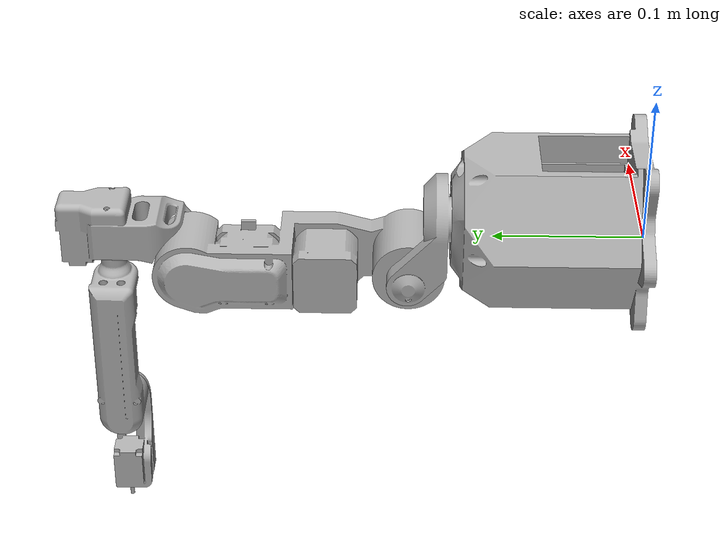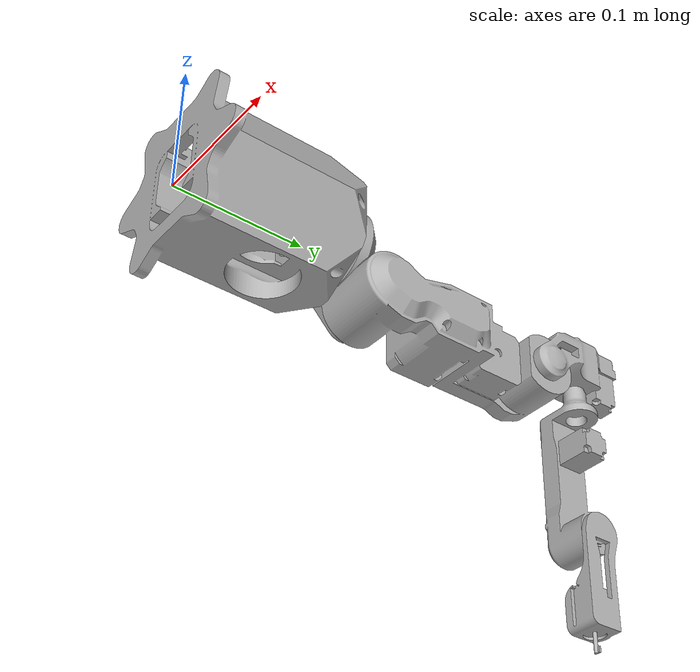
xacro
<?xml version="1.0" ?>
<robot name="jy_arm" xmlns:xacro="http://www.ros.org/wiki/xacro">

<xacro:include filename="$(find jy_arm_description)/urdf/materials.xacro" />
<xacro:include filename="$(find jy_arm_description)/urdf/jy_arm.trans" />
<xacro:include filename="$(find jy_arm_description)/urdf/jy_arm.gazebo" />
<link name="base_link">
  <inertial>
    <origin xyz="-0.00011106458799925955 0.06311159153372557 0.013057877386527852" rpy="0 0 0"/>
    <mass value="5.366253574558696"/>
    <inertia ixx="0.011666" iyy="0.009197" izz="0.013373" ixy="-0.0" iyz="-0.000402" ixz="-0.0"/>
  </inertial>
  <visual>
    <origin xyz="0 0 0" rpy="0 0 0"/>
    <geometry>
      <mesh filename="package://jy_arm_description/meshes/base_link.stl" scale="0.001 0.001 0.001"/>
    </geometry>
    <material name="silver"/>
  </visual>
  <collision>
    <origin xyz="0 0 0" rpy="0 0 0"/>
    <geometry>
      <mesh filename="package://jy_arm_description/meshes/base_link.stl" scale="0.001 0.001 0.001"/>
    </geometry>
  </collision>
</link>

<link name="elbow_1">
  <inertial>
    <origin xyz="-0.018598185056512773 0.042969594521089005 0.021525519944900307" rpy="0 0 0"/>
    <mass value="0.47914913697859285"/>
    <inertia ixx="0.000369" iyy="0.000171" izz="0.000397" ixy="8.8e-05" iyz="-4.1e-05" ixz="2.7e-05"/>
  </inertial>
  <visual>
    <origin xyz="-0.024539 -0.301316 0.022486" rpy="0 0 0"/>
    <geometry>
      <mesh filename="package://jy_arm_description/meshes/elbow_1.stl" scale="0.001 0.001 0.001"/>
    </geometry>
    <material name="silver"/>
  </visual>
  <collision>
    <origin xyz="-0.024539 -0.301316 0.022486" rpy="0 0 0"/>
    <geometry>
      <mesh filename="package://jy_arm_description/meshes/elbow_1.stl" scale="0.001 0.001 0.001"/>
    </geometry>
  </collision>
</link>

<link name="forearm_1">
  <inertial>
    <origin xyz="-0.009704250720106458 0.0004656574510826794 -0.06766874466878209" rpy="0 0 0"/>
    <mass value="0.5145873026308719"/>
    <inertia ixx="0.000846" iyy="0.000886" izz="0.000112" ixy="2e-06" iyz="1e-06" ixz="-1.6e-05"/>
  </inertial>
  <visual>
    <origin xyz="0.000111 -0.3533 0.012492" rpy="0 0 0"/>
    <geometry>
      <mesh filename="package://jy_arm_description/meshes/forearm_1.stl" scale="0.001 0.001 0.001"/>
    </geometry>
    <material name="silver"/>
  </visual>
  <collision>
    <origin xyz="0.000111 -0.3533 0.012492" rpy="0 0 0"/>
    <geometry>
      <mesh filename="package://jy_arm_description/meshes/forearm_1.stl" scale="0.001 0.001 0.001"/>
    </geometry>
  </collision>
</link>

<link name="hand_1">
  <inertial>
    <origin xyz="0.00021385622241918795 8.54127877321087e-05 -0.008045775876672184" rpy="0 0 0"/>
    <mass value="0.0009288640955598442"/>
    <inertia ixx="0.0" iyy="0.0" izz="0.0" ixy="-0.0" iyz="0.0" ixz="0.0"/>
  </inertial>
  <visual>
    <origin xyz="0.000111 -0.3533 0.207992" rpy="0 0 0"/>
    <geometry>
      <mesh filename="package://jy_arm_description/meshes/hand_1.stl" scale="0.001 0.001 0.001"/>
    </geometry>
    <material name="silver"/>
  </visual>
  <collision>
    <origin xyz="0.000111 -0.3533 0.207992" rpy="0 0 0"/>
    <geometry>
      <mesh filename="package://jy_arm_description/meshes/hand_1.stl" scale="0.001 0.001 0.001"/>
    </geometry>
  </collision>
</link>

<link name="base_rotor_1">
  <inertial>
    <origin xyz="-0.006646332363299095 0.01292667635559297 -0.005624744916669085" rpy="0 0 0"/>
    <mass value="0.39974448473287827"/>
    <inertia ixx="0.000167" iyy="0.00025" izz="0.000145" ixy="2.8e-05" iyz="3.7e-05" ixz="-6.2e-05"/>
  </inertial>
  <visual>
    <origin xyz="0.000111 -0.1273 -0.012508" rpy="0 0 0"/>
    <geometry>
      <mesh filename="package://jy_arm_description/meshes/base_rotor_1.stl" scale="0.001 0.001 0.001"/>
    </geometry>
    <material name="silver"/>
  </visual>
  <collision>
    <origin xyz="0.000111 -0.1273 -0.012508" rpy="0 0 0"/>
    <geometry>
      <mesh filename="package://jy_arm_description/meshes/base_rotor_1.stl" scale="0.001 0.001 0.001"/>
    </geometry>
  </collision>
</link>

<link name="arm_1">
  <inertial>
    <origin xyz="0.021930134761569527 0.07282616378941456 -0.0017490427054493891" rpy="0 0 0"/>
    <mass value="3.0392859375785495"/>
    <inertia ixx="0.009853" iyy="0.001355" izz="0.010273" ixy="0.000887" iyz="-5.6e-05" ixz="9e-06"/>
  </inertial>
  <visual>
    <origin xyz="0.018611 -0.155316 0.022486" rpy="0 0 0"/>
    <geometry>
      <mesh filename="package://jy_arm_description/meshes/arm_1.stl" scale="0.001 0.001 0.001"/>
    </geometry>
    <material name="silver"/>
  </visual>
  <collision>
    <origin xyz="0.018611 -0.155316 0.022486" rpy="0 0 0"/>
    <geometry>
      <mesh filename="package://jy_arm_description/meshes/arm_1.stl" scale="0.001 0.001 0.001"/>
    </geometry>
  </collision>
</link>

<link name="wrist_1">
  <inertial>
    <origin xyz="-0.005171387015090242 -0.0025269947515656477 -0.0467670980512126" rpy="0 0 0"/>
    <mass value="0.18202125492055582"/>
    <inertia ixx="9.5e-05" iyy="9.5e-05" izz="2.2e-05" ixy="0.0" iyz="-1e-06" ixz="-1.4e-05"/>
  </inertial>
  <visual>
    <origin xyz="-0.009689 -0.3533 0.137492" rpy="0 0 0"/>
    <geometry>
      <mesh filename="package://jy_arm_description/meshes/wrist_1.stl" scale="0.001 0.001 0.001"/>
    </geometry>
    <material name="silver"/>
  </visual>
  <collision>
    <origin xyz="-0.009689 -0.3533 0.137492" rpy="0 0 0"/>
    <geometry>
      <mesh filename="package://jy_arm_description/meshes/wrist_1.stl" scale="0.001 0.001 0.001"/>
    </geometry>
  </collision>
</link>

<joint name="arm_to_elbow" type="continuous">
  <origin xyz="0.04315 0.146 0.0" rpy="0 0 0"/>
  <parent link="arm_1"/>
  <child link="elbow_1"/>
  <axis xyz="1.0 0.0 -0.0"/>
</joint>

<joint name="elbow_to_forearm" type="continuous">
  <origin xyz="-0.02465 0.051984 0.009994" rpy="0 0 0"/>
  <parent link="elbow_1"/>
  <child link="forearm_1"/>
  <axis xyz="-0.0 -0.0 -1.0"/>
</joint>

<joint name="wrist_to_arm" type="continuous">
  <origin xyz="-0.0098 0.0 -0.0705" rpy="0 0 0"/>
  <parent link="wrist_1"/>
  <child link="hand_1"/>
  <axis xyz="0.0 0.0 -1.0"/>
</joint>

<joint name="base_link_to_base_rotor" type="continuous">
  <origin xyz="-0.000111 0.1273 0.012508" rpy="0 0 0"/>
  <parent link="base_link"/>
  <child link="base_rotor_1"/>
  <axis xyz="-0.0 1.0 0.0"/>
</joint>

<joint name="base_rotor_to_arm" type="continuous">
  <origin xyz="-0.0185 0.028016 -0.034994" rpy="0 0 0"/>
  <parent link="base_rotor_1"/>
  <child link="arm_1"/>
  <axis xyz="1.0 0.0 -0.0"/>
</joint>

<joint name="forearm_to_wrist" type="continuous">
  <origin xyz="0.0098 0.0 -0.125" rpy="0 0 0"/>
  <parent link="forearm_1"/>
  <child link="wrist_1"/>
  <axis xyz="1.0 -0.0 -0.0"/>
</joint>

</robot>

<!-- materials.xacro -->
<robot name="jy_arm" xmlns:xacro="http://www.ros.org/wiki/xacro" >

<material name="silver">
  <color rgba="0.700 0.700 0.700 1.000"/>
</material>

</robot>

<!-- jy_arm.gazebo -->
<robot name="jy_arm" xmlns:xacro="http://www.ros.org/wiki/xacro" >

<xacro:property name="body_color" value="Gazebo/Silver" />

<gazebo>
  <plugin name="control" filename="libgazebo_ros_control.so"/>
</gazebo>
<gazebo reference="base_link">
  <material>${body_color}</material>
  <mu1>0.2</mu1>
  <mu2>0.2</mu2>
  <selfCollide>true</selfCollide>
  <gravity>true</gravity>
</gazebo>

<gazebo reference="elbow_1">
  <material>${body_color}</material>
  <mu1>0.2</mu1>
  <mu2>0.2</mu2>
  <selfCollide>true</selfCollide>
</gazebo>

<gazebo reference="forearm_1">
  <material>${body_color}</material>
  <mu1>0.2</mu1>
  <mu2>0.2</mu2>
  <selfCollide>true</selfCollide>
</gazebo>

<gazebo reference="hand_1">
  <material>${body_color}</material>
  <mu1>0.2</mu1>
  <mu2>0.2</mu2>
  <selfCollide>true</selfCollide>
</gazebo>

<gazebo reference="base_rotor_1">
  <material>${body_color}</material>
  <mu1>0.2</mu1>
  <mu2>0.2</mu2>
  <selfCollide>true</selfCollide>
</gazebo>

<gazebo reference="arm_1">
  <material>${body_color}</material>
  <mu1>0.2</mu1>
  <mu2>0.2</mu2>
  <selfCollide>true</selfCollide>
</gazebo>

<gazebo reference="wrist_1">
  <material>${body_color}</material>
  <mu1>0.2</mu1>
  <mu2>0.2</mu2>
  <selfCollide>true</selfCollide>
</gazebo>

</robot>
